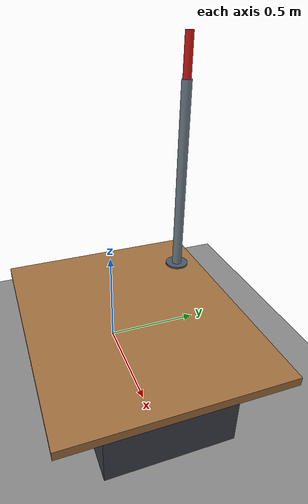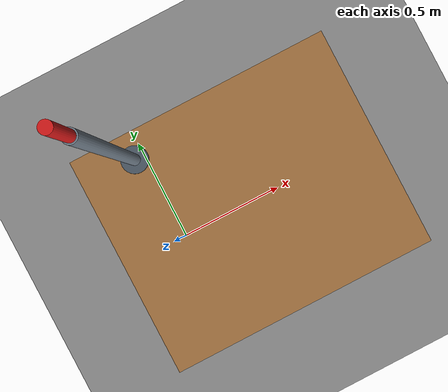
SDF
<?xml version="1.0"?>
<sdf version="1.6">
  <world name="ur5e_pick">
    <gravity>0 0 -9.81</gravity>
    <physics name="ode" type="ode">
      <max_step_size>0.001</max_step_size>
      <real_time_update_rate>1000</real_time_update_rate>
      <ode>
        <solver><type>quick</type><iters>100</iters><sor>1.3</sor></solver>
        <constraints><contact_max_correcting_vel>0.01</contact_max_correcting_vel>
          <contact_surface_layer>0.0001</contact_surface_layer></constraints>
      </ode>
    </physics>
    <scene><ambient>0.6 0.6 0.6 1</ambient><background>0.8 0.85 0.9 1</background></scene>
    <light name="sun" type="directional">
      <pose>0 0 10 0 0 0</pose><direction>-0.5 0.1 -0.9</direction>
      <diffuse>0.8 0.8 0.8 1</diffuse><specular>0.2 0.2 0.2 1</specular>
      <cast_shadows>true</cast_shadows>
    </light>
    <gui><camera name="user_camera"><pose>2 -2 1.9 0 0.35 2.35</pose></camera></gui>
    <model name="floor">
      <static>true</static><pose>0 0 -0.05 0 0 0</pose>
      <link name="floor_link">
        <collision name="collision"><geometry><box><size>10 10 0.1</size></box></geometry></collision>
        <visual name="visual"><geometry><box><size>10 10 0.1</size></box></geometry>
          <material><ambient>0.55 0.55 0.55 1</ambient><diffuse>0.55 0.55 0.55 1</diffuse></material></visual>
      </link>
    </model>
    <!-- Tabletop at z=0.4 m; the UR base is mounted at the same height. -->
    <model name="work_table">
      <static>true</static><pose>0.35 0 0 0 0 0</pose>
      <link name="table">
        <collision name="top"><pose>0 0 0.38 0 0 0</pose>
          <geometry><box><size>1.2 1.0 0.04</size></box></geometry></collision>
        <visual name="top"><pose>0 0 0.38 0 0 0</pose>
          <geometry><box><size>1.2 1.0 0.04</size></box></geometry>
          <material><ambient>0.65 0.45 0.25 1</ambient><diffuse>0.65 0.45 0.25 1</diffuse></material></visual>
        <collision name="support"><pose>0 0 0.18 0 0 0</pose>
          <geometry><box><size>1.0 0.6 0.36</size></box></geometry></collision>
        <visual name="support"><pose>0 0 0.18 0 0 0</pose>
          <geometry><box><size>1.0 0.6 0.36</size></box></geometry>
          <material><ambient>0.25 0.25 0.3 1</ambient><diffuse>0.25 0.25 0.3 1</diffuse></material></visual>
      </link>
    </model>
    <model name="practice_pedestal">
      <static>true</static><pose>0.0008 0.3829 0.4 0 0 0</pose>
      <link name="pedestal">
        <collision name="base"><pose>0 0 0.005 0 0 0</pose>
          <geometry><cylinder><radius>0.06</radius><length>0.01</length></cylinder></geometry></collision>
        <visual name="base"><pose>0 0 0.005 0 0 0</pose>
          <geometry><cylinder><radius>0.06</radius><length>0.01</length></cylinder></geometry>
          <material><ambient>0.3 0.35 0.4 1</ambient><diffuse>0.3 0.35 0.4 1</diffuse></material></visual>
        <collision name="column"><pose>0 0 0.4947 0 0 0</pose>
          <geometry><cylinder><radius>0.025</radius><length>0.9694</length></cylinder></geometry></collision>
        <visual name="column"><pose>0 0 0.4947 0 0 0</pose>
          <geometry><cylinder><radius>0.025</radius><length>0.9694</length></cylinder></geometry>
          <material><ambient>0.45 0.5 0.55 1</ambient><diffuse>0.45 0.5 0.55 1</diffuse></material></visual>
      </link>
    </model>
    <!-- Free 40 mm diameter x 200 mm high cylinder, initially 1 mm above
         the pedestal. Optional robot-side exercise grasp assistance may hold it. -->
    <model name="practice_cylinder">
      <pose>0.0008 0.3829 1.4804 0 0 0</pose>
      <static>false</static>
      <link name="cylinder">
        <inertial><mass>0.05</mass><inertia>
          <ixx>0.000171666667</ixx><iyy>0.000171666667</iyy><izz>0.00001</izz>
          <ixy>0</ixy><ixz>0</ixz><iyz>0</iyz>
        </inertia></inertial>
        <collision name="collision">
          <geometry><cylinder><radius>0.02</radius><length>0.2</length></cylinder></geometry>
          <surface><friction><ode><mu>1.5</mu><mu2>1.5</mu2></ode></friction>
            <contact><ode><kp>2000</kp><kd>20</kd><max_vel>0.01</max_vel><min_depth>0.0001</min_depth></ode></contact>
          </surface>
        </collision>
        <visual name="visual"><geometry><cylinder><radius>0.02</radius><length>0.2</length></cylinder></geometry>
          <material><ambient>0.85 0.1 0.1 1</ambient><diffuse>0.85 0.1 0.1 1</diffuse></material></visual>
      </link>
    </model>
  </world>
</sdf>
